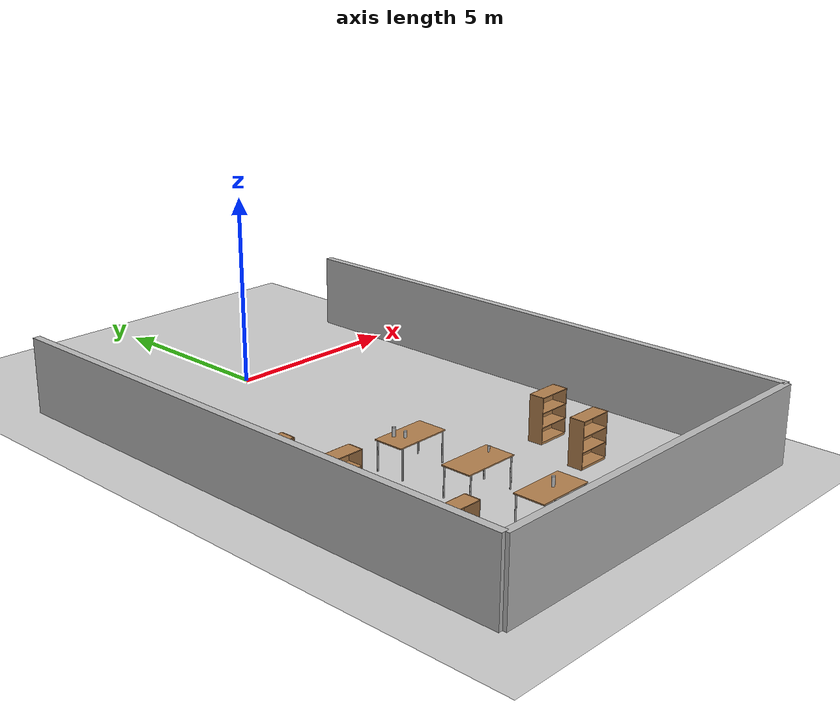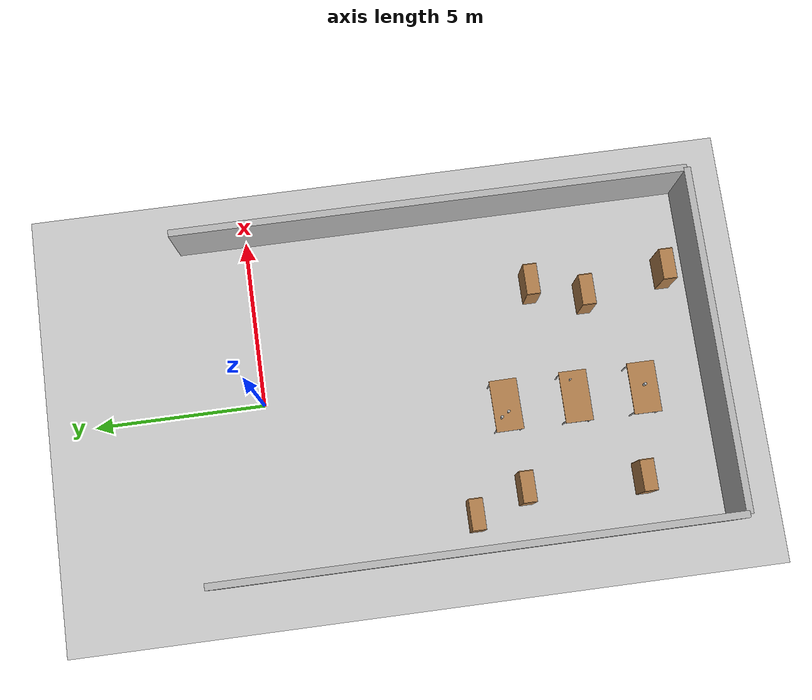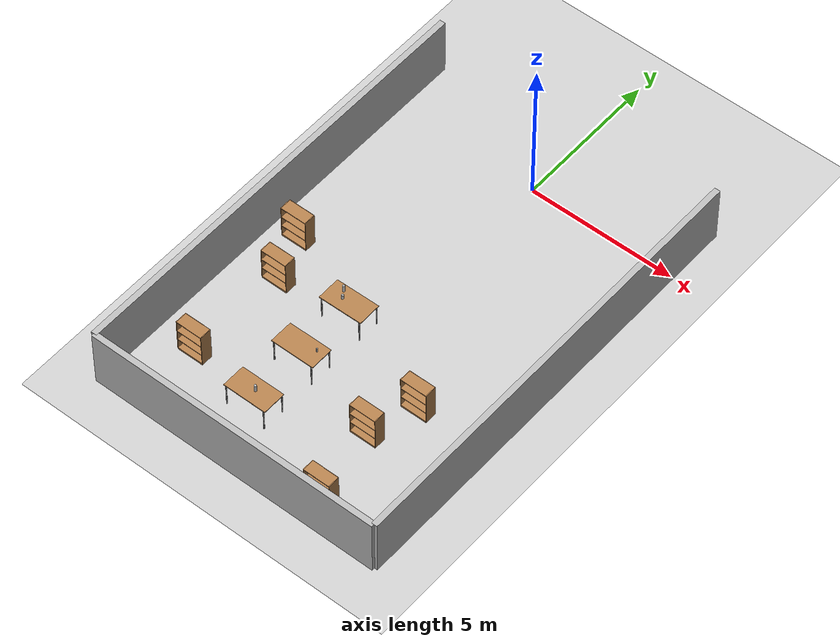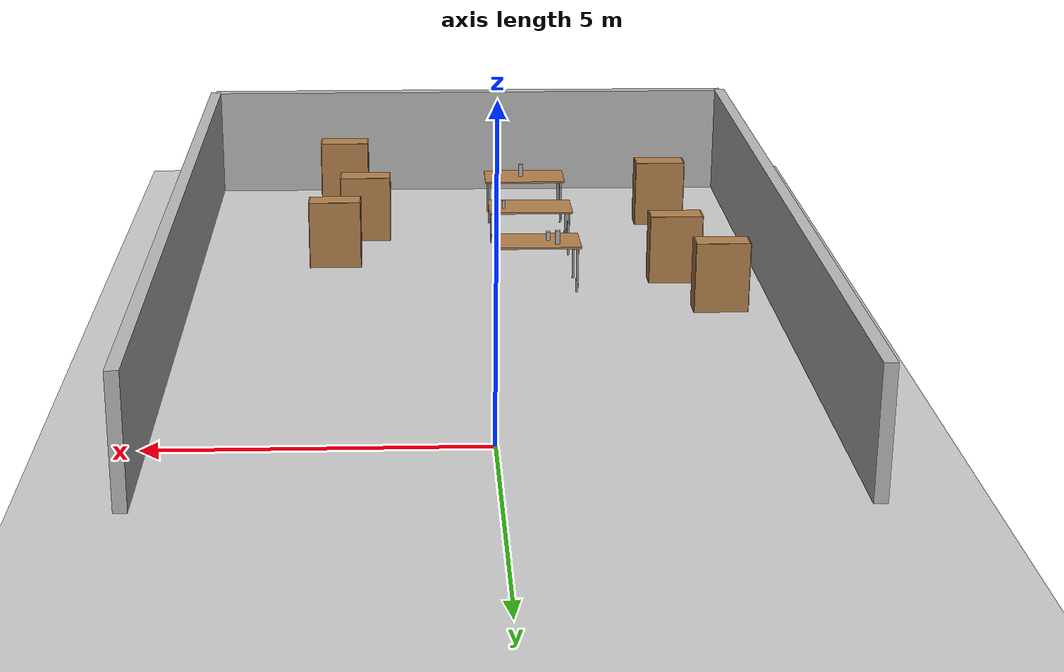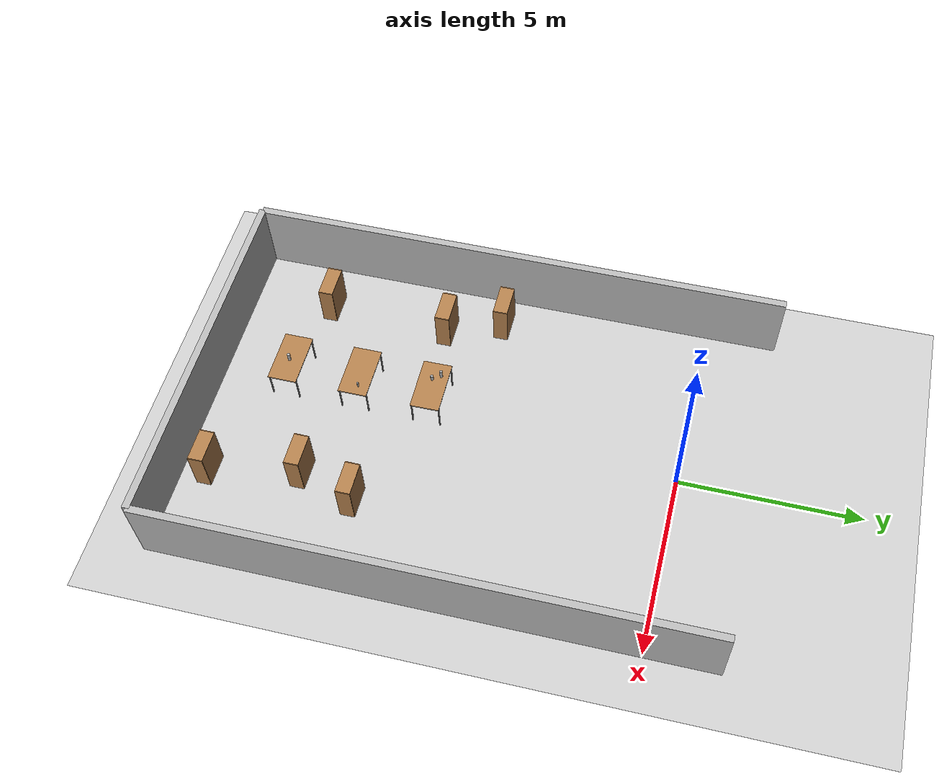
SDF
<sdf version="1.7">
 <world name="default">
  <model name="ground_plane">
   <static>1</static>
   <link name="link">
    <collision name="collision">
     <geometry><plane><normal>0 0 1</normal><size>100 100</size></plane></geometry>
     <surface><friction><ode><mu>100</mu><mu2>50</mu2></ode></friction></surface>
    </collision>
    <visual name="visual">
     <cast_shadows>0</cast_shadows>
     <geometry><plane><normal>0 0 1</normal><size>100 100</size></plane></geometry>
     <material>
      <script><uri>file://media/materials/scripts/gazebo.material</uri><name>Gazebo/Grey</name></script>
     </material>
    </visual>
    <velocity_decay><linear>0</linear><angular>0</angular></velocity_decay>
   </link>
  </model>
  <model name="wall_1_model">
   <pose>0 -13 1 0 -0 0</pose>
   <static>1</static>
   <link name="wall_1_body">
    <inertial>
     <mass>1</mass>
     <inertia><ixx>1</ixx><ixy>0</ixy><ixz>0</ixz><iyy>1</iyy><iyz>0</iyz><izz>1</izz></inertia>
    </inertial>
    <collision name="collision"><geometry><box><size>10 0.2 2</size></box></geometry></collision>
    <visual name="visual"><geometry><box><size>10 0.2 2</size></box></geometry></visual>
    <velocity_decay><linear>0</linear><angular>0</angular></velocity_decay>
   </link>
  </model>
  <model name="wall_3_model">
   <pose>-5 -5.5 1 0 -0 0</pose>
   <static>1</static>
   <link name="wall_3_body">
    <inertial>
     <mass>1</mass>
     <inertia><ixx>1</ixx><ixy>0</ixy><ixz>0</ixz><iyy>1</iyy><iyz>0</iyz><izz>1</izz></inertia>
    </inertial>
    <collision name="collision"><geometry><box><size>0.2 15 2</size></box></geometry></collision>
    <visual name="visual"><geometry><box><size>0.2 15 2</size></box></geometry></visual>
    <velocity_decay><linear>0</linear><angular>0</angular></velocity_decay>
   </link>
  </model>
  <model name="wall_4_model">
   <pose>5 -5.5 1 0 -0 0</pose>
   <static>1</static>
   <link name="wall_4_body">
    <inertial>
     <mass>1</mass>
     <inertia><ixx>1</ixx><ixy>0</ixy><ixz>0</ixz><iyy>1</iyy><iyz>0</iyz><izz>1</izz></inertia>
    </inertial>
    <collision name="collision"><geometry><box><size>0.2 15 2</size></box></geometry></collision>
    <visual name="visual"><geometry><box><size>0.2 15 2</size></box></geometry></visual>
    <velocity_decay><linear>0</linear><angular>0</angular></velocity_decay>
   </link>
  </model>
  <model name="bookshelf">
   <static>0</static>
   <link name="link">
    <inertial>
     <mass>1</mass>
     <inertia><ixx>1</ixx><ixy>0</ixy><ixz>0</ixz><iyy>1</iyy><iyz>0</iyz><izz>1</izz></inertia>
    </inertial>
    <collision name="back">
     <pose>0 0.005 0.6 0 -0 0</pose>
     <geometry><box><size>0.9 0.01 1.2</size></box></geometry>
    </collision>
    <visual name="visual1">
     <pose>0 0.005 0.6 0 -0 0</pose>
     <geometry><box><size>0.9 0.01 1.2</size></box></geometry>
     <material>
      <script><uri>file://media/materials/scripts/gazebo.material</uri><name>Gazebo/Wood</name></script>
     </material>
    </visual>
    <collision name="left_side">
     <pose>0.45 -0.195 0.6 0 -0 0</pose>
     <geometry><box><size>0.02 0.4 1.2</size></box></geometry>
    </collision>
    <visual name="visual2">
     <pose>0.45 -0.195 0.6 0 -0 0</pose>
     <geometry><box><size>0.02 0.4 1.2</size></box></geometry>
     <material>
      <script><uri>file://media/materials/scripts/gazebo.material</uri><name>Gazebo/Wood</name></script>
     </material>
    </visual>
    <collision name="right_side">
     <pose>-0.45 -0.195 0.6 0 -0 0</pose>
     <geometry><box><size>0.02 0.4 1.2</size></box></geometry>
    </collision>
    <visual name="visual3">
     <pose>-0.45 -0.195 0.6 0 -0 0</pose>
     <geometry><box><size>0.02 0.4 1.2</size></box></geometry>
     <material>
      <script><uri>file://media/materials/scripts/gazebo.material</uri><name>Gazebo/Wood</name></script>
     </material>
    </visual>
    <collision name="bottom">
     <pose>0 -0.195 0.03 0 -0 0</pose>
     <geometry><box><size>0.88 0.4 0.06</size></box></geometry>
    </collision>
    <visual name="visual4">
     <pose>0 -0.195 0.03 0 -0 0</pose>
     <geometry><box><size>0.88 0.4 0.06</size></box></geometry>
     <material>
      <script><uri>file://media/materials/scripts/gazebo.material</uri><name>Gazebo/Wood</name></script>
     </material>
    </visual>
    <collision name="top">
     <pose>0 -0.195 1.19 0 -0 0</pose>
     <geometry><box><size>0.88 0.4 0.02</size></box></geometry>
    </collision>
    <visual name="visual5">
     <pose>0 -0.195 1.19 0 -0 0</pose>
     <geometry><box><size>0.88 0.4 0.02</size></box></geometry>
     <material>
      <script><uri>file://media/materials/scripts/gazebo.material</uri><name>Gazebo/Wood</name></script>
     </material>
    </visual>
    <collision name="low_shelf">
     <pose>0 -0.195 0.43 0 -0 0</pose>
     <geometry><box><size>0.88 0.4 0.02</size></box></geometry>
    </collision>
    <visual name="visual6">
     <pose>0 -0.195 0.43 0 -0 0</pose>
     <geometry><box><size>0.88 0.4 0.02</size></box></geometry>
     <material>
      <script><uri>file://media/materials/scripts/gazebo.material</uri><name>Gazebo/Wood</name></script>
     </material>
    </visual>
    <collision name="high_shelf">
     <pose>0 -0.195 0.8 0 -0 0</pose>
     <geometry><box><size>0.88 0.4 0.02</size></box></geometry>
    </collision>
    <visual name="visual7">
     <pose>0 -0.195 0.8 0 -0 0</pose>
     <geometry><box><size>0.88 0.4 0.02</size></box></geometry>
     <material>
      <script><uri>file://media/materials/scripts/gazebo.material</uri><name>Gazebo/Wood</name></script>
     </material>
    </visual>
    <velocity_decay><linear>0</linear><angular>0</angular></velocity_decay>
   </link>
   <pose>2 -9.55401 0 -5e-06 0 0</pose>
  </model>
  <model name="table">
   <static>0</static>
   <link name="link">
    <collision name="surface">
     <pose>0 0 0.9 0 -0 0</pose>
     <geometry><box><size>1.5 0.8 0.03</size></box></geometry>
    </collision>
    <visual name="visual1">
     <pose>0 0 0.9 0 -0 0</pose>
     <geometry><box><size>1.5 0.8 0.03</size></box></geometry>
     <material>
      <script><uri>file://media/materials/scripts/gazebo.material</uri><name>Gazebo/Wood</name></script>
     </material>
    </visual>
    <collision name="front_left_leg">
     <pose>0.68 0.38 0.5 0 -0 0</pose>
     <geometry><cylinder><radius>0.02</radius><length>0.8</length></cylinder></geometry>
    </collision>
    <visual name="front_left_leg">
     <pose>0.68 0.38 0.5 0 -0 0</pose>
     <geometry><cylinder><radius>0.02</radius><length>0.8</length></cylinder></geometry>
     <material>
      <script><uri>file://media/materials/scripts/gazebo.material</uri><name>Gazebo/Grey</name></script>
     </material>
    </visual>
    <collision name="front_right_leg">
     <pose>0.68 -0.38 0.5 0 -0 0</pose>
     <geometry><cylinder><radius>0.02</radius><length>0.8</length></cylinder></geometry>
    </collision>
    <visual name="front_right_leg">
     <pose>0.68 -0.38 0.5 0 -0 0</pose>
     <geometry><cylinder><radius>0.02</radius><length>0.8</length></cylinder></geometry>
     <material>
      <script><uri>file://media/materials/scripts/gazebo.material</uri><name>Gazebo/Grey</name></script>
     </material>
    </visual>
    <collision name="back_right_leg">
     <pose>-0.68 -0.38 0.5 0 -0 0</pose>
     <geometry><cylinder><radius>0.02</radius><length>0.8</length></cylinder></geometry>
    </collision>
    <visual name="back_right_leg">
     <pose>-0.68 -0.38 0.5 0 -0 0</pose>
     <geometry><cylinder><radius>0.02</radius><length>0.8</length></cylinder></geometry>
     <material>
      <script><uri>file://media/materials/scripts/gazebo.material</uri><name>Gazebo/Grey</name></script>
     </material>
    </visual>
    <collision name="back_left_leg">
     <pose>-0.68 0.38 0.5 0 -0 0</pose>
     <geometry><cylinder><radius>0.02</radius><length>0.8</length></cylinder></geometry>
    </collision>
    <visual name="back_left_leg">
     <pose>-0.68 0.38 0.5 0 -0 0</pose>
     <geometry><cylinder><radius>0.02</radius><length>0.8</length></cylinder></geometry>
     <material>
      <script><uri>file://media/materials/scripts/gazebo.material</uri><name>Gazebo/Grey</name></script>
     </material>
    </visual>
    <velocity_decay><linear>0</linear><angular>0</angular></velocity_decay>
    <inertial>
     <inertia><ixx>1</ixx><ixy>0</ixy><ixz>0</ixz><iyy>1</iyy><iyz>0</iyz><izz>1</izz></inertia>
     <mass>1</mass>
    </inertial>
   </link>
   <pose>-1.00064 -8.99574 -0.105007 -8e-06 5.2e-05 -0.000544</pose>
  </model>
  <model name="bookshelf_2">
   <static>0</static>
   <link name="link">
    <inertial>
     <mass>1</mass>
     <inertia><ixx>1</ixx><ixy>0</ixy><ixz>0</ixz><iyy>1</iyy><iyz>0</iyz><izz>1</izz></inertia>
    </inertial>
    <collision name="back">
     <pose>0 0.005 0.6 0 -0 0</pose>
     <geometry><box><size>0.9 0.01 1.2</size></box></geometry>
    </collision>
    <visual name="visual1">
     <pose>0 0.005 0.6 0 -0 0</pose>
     <geometry><box><size>0.9 0.01 1.2</size></box></geometry>
     <material>
      <script><uri>file://media/materials/scripts/gazebo.material</uri><name>Gazebo/Wood</name></script>
     </material>
    </visual>
    <collision name="left_side">
     <pose>0.45 -0.195 0.6 0 -0 0</pose>
     <geometry><box><size>0.02 0.4 1.2</size></box></geometry>
    </collision>
    <visual name="visual2">
     <pose>0.45 -0.195 0.6 0 -0 0</pose>
     <geometry><box><size>0.02 0.4 1.2</size></box></geometry>
     <material>
      <script><uri>file://media/materials/scripts/gazebo.material</uri><name>Gazebo/Wood</name></script>
     </material>
    </visual>
    <collision name="right_side">
     <pose>-0.45 -0.195 0.6 0 -0 0</pose>
     <geometry><box><size>0.02 0.4 1.2</size></box></geometry>
    </collision>
    <visual name="visual3">
     <pose>-0.45 -0.195 0.6 0 -0 0</pose>
     <geometry><box><size>0.02 0.4 1.2</size></box></geometry>
     <material>
      <script><uri>file://media/materials/scripts/gazebo.material</uri><name>Gazebo/Wood</name></script>
     </material>
    </visual>
    <collision name="bottom">
     <pose>0 -0.195 0.03 0 -0 0</pose>
     <geometry><box><size>0.88 0.4 0.06</size></box></geometry>
    </collision>
    <visual name="visual4">
     <pose>0 -0.195 0.03 0 -0 0</pose>
     <geometry><box><size>0.88 0.4 0.06</size></box></geometry>
     <material>
      <script><uri>file://media/materials/scripts/gazebo.material</uri><name>Gazebo/Wood</name></script>
     </material>
    </visual>
    <collision name="top">
     <pose>0 -0.195 1.19 0 -0 0</pose>
     <geometry><box><size>0.88 0.4 0.02</size></box></geometry>
    </collision>
    <visual name="visual5">
     <pose>0 -0.195 1.19 0 -0 0</pose>
     <geometry><box><size>0.88 0.4 0.02</size></box></geometry>
     <material>
      <script><uri>file://media/materials/scripts/gazebo.material</uri><name>Gazebo/Wood</name></script>
     </material>
    </visual>
    <collision name="low_shelf">
     <pose>0 -0.195 0.43 0 -0 0</pose>
     <geometry><box><size>0.88 0.4 0.02</size></box></geometry>
    </collision>
    <visual name="visual6">
     <pose>0 -0.195 0.43 0 -0 0</pose>
     <geometry><box><size>0.88 0.4 0.02</size></box></geometry>
     <material>
      <script><uri>file://media/materials/scripts/gazebo.material</uri><name>Gazebo/Wood</name></script>
     </material>
    </visual>
    <collision name="high_shelf">
     <pose>0 -0.195 0.8 0 -0 0</pose>
     <geometry><box><size>0.88 0.4 0.02</size></box></geometry>
    </collision>
    <visual name="visual7">
     <pose>0 -0.195 0.8 0 -0 0</pose>
     <geometry><box><size>0.88 0.4 0.02</size></box></geometry>
     <material>
      <script><uri>file://media/materials/scripts/gazebo.material</uri><name>Gazebo/Wood</name></script>
     </material>
    </visual>
    <velocity_decay><linear>0</linear><angular>0</angular></velocity_decay>
   </link>
   <pose>-3.41849 -7 -1e-06 -2.3e-05 3e-06 0</pose>
  </model>
  <model name="table_0">
   <static>0</static>
   <link name="link">
    <collision name="surface">
     <pose>0 0 0.9 0 -0 0</pose>
     <geometry><box><size>1.5 0.8 0.03</size></box></geometry>
    </collision>
    <visual name="visual1">
     <pose>0 0 0.9 0 -0 0</pose>
     <geometry><box><size>1.5 0.8 0.03</size></box></geometry>
     <material>
      <script><uri>file://media/materials/scripts/gazebo.material</uri><name>Gazebo/Wood</name></script>
     </material>
    </visual>
    <collision name="front_left_leg">
     <pose>0.68 0.38 0.5 0 -0 0</pose>
     <geometry><cylinder><radius>0.02</radius><length>0.8</length></cylinder></geometry>
    </collision>
    <visual name="front_left_leg">
     <pose>0.68 0.38 0.5 0 -0 0</pose>
     <geometry><cylinder><radius>0.02</radius><length>0.8</length></cylinder></geometry>
     <material>
      <script><uri>file://media/materials/scripts/gazebo.material</uri><name>Gazebo/Grey</name></script>
     </material>
    </visual>
    <collision name="front_right_leg">
     <pose>0.68 -0.38 0.5 0 -0 0</pose>
     <geometry><cylinder><radius>0.02</radius><length>0.8</length></cylinder></geometry>
    </collision>
    <visual name="front_right_leg">
     <pose>0.68 -0.38 0.5 0 -0 0</pose>
     <geometry><cylinder><radius>0.02</radius><length>0.8</length></cylinder></geometry>
     <material>
      <script><uri>file://media/materials/scripts/gazebo.material</uri><name>Gazebo/Grey</name></script>
     </material>
    </visual>
    <collision name="back_right_leg">
     <pose>-0.68 -0.38 0.5 0 -0 0</pose>
     <geometry><cylinder><radius>0.02</radius><length>0.8</length></cylinder></geometry>
    </collision>
    <visual name="back_right_leg">
     <pose>-0.68 -0.38 0.5 0 -0 0</pose>
     <geometry><cylinder><radius>0.02</radius><length>0.8</length></cylinder></geometry>
     <material>
      <script><uri>file://media/materials/scripts/gazebo.material</uri><name>Gazebo/Grey</name></script>
     </material>
    </visual>
    <collision name="back_left_leg">
     <pose>-0.68 0.38 0.5 0 -0 0</pose>
     <geometry><cylinder><radius>0.02</radius><length>0.8</length></cylinder></geometry>
    </collision>
    <visual name="back_left_leg">
     <pose>-0.68 0.38 0.5 0 -0 0</pose>
     <geometry><cylinder><radius>0.02</radius><length>0.8</length></cylinder></geometry>
     <material>
      <script><uri>file://media/materials/scripts/gazebo.material</uri><name>Gazebo/Grey</name></script>
     </material>
    </visual>
    <velocity_decay><linear>0</linear><angular>0</angular></velocity_decay>
    <inertial>
     <inertia><ixx>1</ixx><ixy>0</ixy><ixz>0</ixz><iyy>1</iyy><iyz>0</iyz><izz>1</izz></inertia>
     <mass>1</mass>
    </inertial>
   </link>
   <pose>-0.9933 -6.97211 -0.111429 -0.00054 -0.00169 0.010892</pose>
  </model>
  <model name="table_1">
   <static>0</static>
   <link name="link">
    <collision name="surface">
     <pose>0 0 0.9 0 -0 0</pose>
     <geometry><box><size>1.5 0.8 0.03</size></box></geometry>
    </collision>
    <visual name="visual1">
     <pose>0 0 0.9 0 -0 0</pose>
     <geometry><box><size>1.5 0.8 0.03</size></box></geometry>
     <material>
      <script><uri>file://media/materials/scripts/gazebo.material</uri><name>Gazebo/Wood</name></script>
     </material>
    </visual>
    <collision name="front_left_leg">
     <pose>0.68 0.38 0.5 0 -0 0</pose>
     <geometry><cylinder><radius>0.02</radius><length>0.8</length></cylinder></geometry>
    </collision>
    <visual name="front_left_leg">
     <pose>0.68 0.38 0.5 0 -0 0</pose>
     <geometry><cylinder><radius>0.02</radius><length>0.8</length></cylinder></geometry>
     <material>
      <script><uri>file://media/materials/scripts/gazebo.material</uri><name>Gazebo/Grey</name></script>
     </material>
    </visual>
    <collision name="front_right_leg">
     <pose>0.68 -0.38 0.5 0 -0 0</pose>
     <geometry><cylinder><radius>0.02</radius><length>0.8</length></cylinder></geometry>
    </collision>
    <visual name="front_right_leg">
     <pose>0.68 -0.38 0.5 0 -0 0</pose>
     <geometry><cylinder><radius>0.02</radius><length>0.8</length></cylinder></geometry>
     <material>
      <script><uri>file://media/materials/scripts/gazebo.material</uri><name>Gazebo/Grey</name></script>
     </material>
    </visual>
    <collision name="back_right_leg">
     <pose>-0.68 -0.38 0.5 0 -0 0</pose>
     <geometry><cylinder><radius>0.02</radius><length>0.8</length></cylinder></geometry>
    </collision>
    <visual name="back_right_leg">
     <pose>-0.68 -0.38 0.5 0 -0 0</pose>
     <geometry><cylinder><radius>0.02</radius><length>0.8</length></cylinder></geometry>
     <material>
      <script><uri>file://media/materials/scripts/gazebo.material</uri><name>Gazebo/Grey</name></script>
     </material>
    </visual>
    <collision name="back_left_leg">
     <pose>-0.68 0.38 0.5 0 -0 0</pose>
     <geometry><cylinder><radius>0.02</radius><length>0.8</length></cylinder></geometry>
    </collision>
    <visual name="back_left_leg">
     <pose>-0.68 0.38 0.5 0 -0 0</pose>
     <geometry><cylinder><radius>0.02</radius><length>0.8</length></cylinder></geometry>
     <material>
      <script><uri>file://media/materials/scripts/gazebo.material</uri><name>Gazebo/Grey</name></script>
     </material>
    </visual>
    <velocity_decay><linear>0</linear><angular>0</angular></velocity_decay>
    <inertial>
     <inertia><ixx>1</ixx><ixy>0</ixy><ixz>0</ixz><iyy>1</iyy><iyz>0</iyz><izz>1</izz></inertia>
     <mass>1</mass>
    </inertial>
   </link>
   <pose>-1.00308 -10.9916 -0.107832 -3e-06 0.000182 -0.001766</pose>
  </model>
  <model name="bookshelf_3">
   <static>0</static>
   <link name="link">
    <inertial>
     <mass>1</mass>
     <inertia><ixx>1</ixx><ixy>0</ixy><ixz>0</ixz><iyy>1</iyy><iyz>0</iyz><izz>1</izz></inertia>
    </inertial>
    <collision name="back">
     <pose>0 0.005 0.6 0 -0 0</pose>
     <geometry><box><size>0.9 0.01 1.2</size></box></geometry>
    </collision>
    <visual name="visual1">
     <pose>0 0.005 0.6 0 -0 0</pose>
     <geometry><box><size>0.9 0.01 1.2</size></box></geometry>
     <material>
      <script><uri>file://media/materials/scripts/gazebo.material</uri><name>Gazebo/Wood</name></script>
     </material>
    </visual>
    <collision name="left_side">
     <pose>0.45 -0.195 0.6 0 -0 0</pose>
     <geometry><box><size>0.02 0.4 1.2</size></box></geometry>
    </collision>
    <visual name="visual2">
     <pose>0.45 -0.195 0.6 0 -0 0</pose>
     <geometry><box><size>0.02 0.4 1.2</size></box></geometry>
     <material>
      <script><uri>file://media/materials/scripts/gazebo.material</uri><name>Gazebo/Wood</name></script>
     </material>
    </visual>
    <collision name="right_side">
     <pose>-0.45 -0.195 0.6 0 -0 0</pose>
     <geometry><box><size>0.02 0.4 1.2</size></box></geometry>
    </collision>
    <visual name="visual3">
     <pose>-0.45 -0.195 0.6 0 -0 0</pose>
     <geometry><box><size>0.02 0.4 1.2</size></box></geometry>
     <material>
      <script><uri>file://media/materials/scripts/gazebo.material</uri><name>Gazebo/Wood</name></script>
     </material>
    </visual>
    <collision name="bottom">
     <pose>0 -0.195 0.03 0 -0 0</pose>
     <geometry><box><size>0.88 0.4 0.06</size></box></geometry>
    </collision>
    <visual name="visual4">
     <pose>0 -0.195 0.03 0 -0 0</pose>
     <geometry><box><size>0.88 0.4 0.06</size></box></geometry>
     <material>
      <script><uri>file://media/materials/scripts/gazebo.material</uri><name>Gazebo/Wood</name></script>
     </material>
    </visual>
    <collision name="top">
     <pose>0 -0.195 1.19 0 -0 0</pose>
     <geometry><box><size>0.88 0.4 0.02</size></box></geometry>
    </collision>
    <visual name="visual5">
     <pose>0 -0.195 1.19 0 -0 0</pose>
     <geometry><box><size>0.88 0.4 0.02</size></box></geometry>
     <material>
      <script><uri>file://media/materials/scripts/gazebo.material</uri><name>Gazebo/Wood</name></script>
     </material>
    </visual>
    <collision name="low_shelf">
     <pose>0 -0.195 0.43 0 -0 0</pose>
     <geometry><box><size>0.88 0.4 0.02</size></box></geometry>
    </collision>
    <visual name="visual6">
     <pose>0 -0.195 0.43 0 -0 0</pose>
     <geometry><box><size>0.88 0.4 0.02</size></box></geometry>
     <material>
      <script><uri>file://media/materials/scripts/gazebo.material</uri><name>Gazebo/Wood</name></script>
     </material>
    </visual>
    <collision name="high_shelf">
     <pose>0 -0.195 0.8 0 -0 0</pose>
     <geometry><box><size>0.88 0.4 0.02</size></box></geometry>
    </collision>
    <visual name="visual7">
     <pose>0 -0.195 0.8 0 -0 0</pose>
     <geometry><box><size>0.88 0.4 0.02</size></box></geometry>
     <material>
      <script><uri>file://media/materials/scripts/gazebo.material</uri><name>Gazebo/Wood</name></script>
     </material>
    </visual>
    <velocity_decay><linear>0</linear><angular>0</angular></velocity_decay>
   </link>
   <pose>2.45055 -12 1e-06 -1.2e-05 2e-06 -0</pose>
  </model>
  <model name="bookshelf_4">
   <static>0</static>
   <link name="link">
    <inertial>
     <mass>1</mass>
     <inertia><ixx>1</ixx><ixy>0</ixy><ixz>0</ixz><iyy>1</iyy><iyz>0</iyz><izz>1</izz></inertia>
    </inertial>
    <collision name="back">
     <pose>0 0.005 0.6 0 -0 0</pose>
     <geometry><box><size>0.9 0.01 1.2</size></box></geometry>
    </collision>
    <visual name="visual1">
     <pose>0 0.005 0.6 0 -0 0</pose>
     <geometry><box><size>0.9 0.01 1.2</size></box></geometry>
     <material>
      <script><uri>file://media/materials/scripts/gazebo.material</uri><name>Gazebo/Wood</name></script>
     </material>
    </visual>
    <collision name="left_side">
     <pose>0.45 -0.195 0.6 0 -0 0</pose>
     <geometry><box><size>0.02 0.4 1.2</size></box></geometry>
    </collision>
    <visual name="visual2">
     <pose>0.45 -0.195 0.6 0 -0 0</pose>
     <geometry><box><size>0.02 0.4 1.2</size></box></geometry>
     <material>
      <script><uri>file://media/materials/scripts/gazebo.material</uri><name>Gazebo/Wood</name></script>
     </material>
    </visual>
    <collision name="right_side">
     <pose>-0.45 -0.195 0.6 0 -0 0</pose>
     <geometry><box><size>0.02 0.4 1.2</size></box></geometry>
    </collision>
    <visual name="visual3">
     <pose>-0.45 -0.195 0.6 0 -0 0</pose>
     <geometry><box><size>0.02 0.4 1.2</size></box></geometry>
     <material>
      <script><uri>file://media/materials/scripts/gazebo.material</uri><name>Gazebo/Wood</name></script>
     </material>
    </visual>
    <collision name="bottom">
     <pose>0 -0.195 0.03 0 -0 0</pose>
     <geometry><box><size>0.88 0.4 0.06</size></box></geometry>
    </collision>
    <visual name="visual4">
     <pose>0 -0.195 0.03 0 -0 0</pose>
     <geometry><box><size>0.88 0.4 0.06</size></box></geometry>
     <material>
      <script><uri>file://media/materials/scripts/gazebo.material</uri><name>Gazebo/Wood</name></script>
     </material>
    </visual>
    <collision name="top">
     <pose>0 -0.195 1.19 0 -0 0</pose>
     <geometry><box><size>0.88 0.4 0.02</size></box></geometry>
    </collision>
    <visual name="visual5">
     <pose>0 -0.195 1.19 0 -0 0</pose>
     <geometry><box><size>0.88 0.4 0.02</size></box></geometry>
     <material>
      <script><uri>file://media/materials/scripts/gazebo.material</uri><name>Gazebo/Wood</name></script>
     </material>
    </visual>
    <collision name="low_shelf">
     <pose>0 -0.195 0.43 0 -0 0</pose>
     <geometry><box><size>0.88 0.4 0.02</size></box></geometry>
    </collision>
    <visual name="visual6">
     <pose>0 -0.195 0.43 0 -0 0</pose>
     <geometry><box><size>0.88 0.4 0.02</size></box></geometry>
     <material>
      <script><uri>file://media/materials/scripts/gazebo.material</uri><name>Gazebo/Wood</name></script>
     </material>
    </visual>
    <collision name="high_shelf">
     <pose>0 -0.195 0.8 0 -0 0</pose>
     <geometry><box><size>0.88 0.4 0.02</size></box></geometry>
    </collision>
    <visual name="visual7">
     <pose>0 -0.195 0.8 0 -0 0</pose>
     <geometry><box><size>0.88 0.4 0.02</size></box></geometry>
     <material>
      <script><uri>file://media/materials/scripts/gazebo.material</uri><name>Gazebo/Wood</name></script>
     </material>
    </visual>
    <velocity_decay><linear>0</linear><angular>0</angular></velocity_decay>
   </link>
   <pose>2.51316 -8 1e-06 -6.9e-05 -0 0</pose>
  </model>
  <model name="bookshelf_5">
   <static>0</static>
   <link name="link">
    <inertial>
     <mass>1</mass>
     <inertia><ixx>1</ixx><ixy>0</ixy><ixz>0</ixz><iyy>1</iyy><iyz>0</iyz><izz>1</izz></inertia>
    </inertial>
    <collision name="back">
     <pose>0 0.005 0.6 0 -0 0</pose>
     <geometry><box><size>0.9 0.01 1.2</size></box></geometry>
    </collision>
    <visual name="visual1">
     <pose>0 0.005 0.6 0 -0 0</pose>
     <geometry><box><size>0.9 0.01 1.2</size></box></geometry>
     <material>
      <script><uri>file://media/materials/scripts/gazebo.material</uri><name>Gazebo/Wood</name></script>
     </material>
    </visual>
    <collision name="left_side">
     <pose>0.45 -0.195 0.6 0 -0 0</pose>
     <geometry><box><size>0.02 0.4 1.2</size></box></geometry>
    </collision>
    <visual name="visual2">
     <pose>0.45 -0.195 0.6 0 -0 0</pose>
     <geometry><box><size>0.02 0.4 1.2</size></box></geometry>
     <material>
      <script><uri>file://media/materials/scripts/gazebo.material</uri><name>Gazebo/Wood</name></script>
     </material>
    </visual>
    <collision name="right_side">
     <pose>-0.45 -0.195 0.6 0 -0 0</pose>
     <geometry><box><size>0.02 0.4 1.2</size></box></geometry>
    </collision>
    <visual name="visual3">
     <pose>-0.45 -0.195 0.6 0 -0 0</pose>
     <geometry><box><size>0.02 0.4 1.2</size></box></geometry>
     <material>
      <script><uri>file://media/materials/scripts/gazebo.material</uri><name>Gazebo/Wood</name></script>
     </material>
    </visual>
    <collision name="bottom">
     <pose>0 -0.195 0.03 0 -0 0</pose>
     <geometry><box><size>0.88 0.4 0.06</size></box></geometry>
    </collision>
    <visual name="visual4">
     <pose>0 -0.195 0.03 0 -0 0</pose>
     <geometry><box><size>0.88 0.4 0.06</size></box></geometry>
     <material>
      <script><uri>file://media/materials/scripts/gazebo.material</uri><name>Gazebo/Wood</name></script>
     </material>
    </visual>
    <collision name="top">
     <pose>0 -0.195 1.19 0 -0 0</pose>
     <geometry><box><size>0.88 0.4 0.02</size></box></geometry>
    </collision>
    <visual name="visual5">
     <pose>0 -0.195 1.19 0 -0 0</pose>
     <geometry><box><size>0.88 0.4 0.02</size></box></geometry>
     <material>
      <script><uri>file://media/materials/scripts/gazebo.material</uri><name>Gazebo/Wood</name></script>
     </material>
    </visual>
    <collision name="low_shelf">
     <pose>0 -0.195 0.43 0 -0 0</pose>
     <geometry><box><size>0.88 0.4 0.02</size></box></geometry>
    </collision>
    <visual name="visual6">
     <pose>0 -0.195 0.43 0 -0 0</pose>
     <geometry><box><size>0.88 0.4 0.02</size></box></geometry>
     <material>
      <script><uri>file://media/materials/scripts/gazebo.material</uri><name>Gazebo/Wood</name></script>
     </material>
    </visual>
    <collision name="high_shelf">
     <pose>0 -0.195 0.8 0 -0 0</pose>
     <geometry><box><size>0.88 0.4 0.02</size></box></geometry>
    </collision>
    <visual name="visual7">
     <pose>0 -0.195 0.8 0 -0 0</pose>
     <geometry><box><size>0.88 0.4 0.02</size></box></geometry>
     <material>
      <script><uri>file://media/materials/scripts/gazebo.material</uri><name>Gazebo/Wood</name></script>
     </material>
    </visual>
    <velocity_decay><linear>0</linear><angular>0</angular></velocity_decay>
   </link>
   <pose>-3.53929 -10.4222 0 -4.5e-05 -0 0</pose>
  </model>
  <model name="bookshelf_6">
   <static>0</static>
   <link name="link">
    <inertial>
     <mass>1</mass>
     <inertia><ixx>1</ixx><ixy>0</ixy><ixz>0</ixz><iyy>1</iyy><iyz>0</iyz><izz>1</izz></inertia>
    </inertial>
    <collision name="back">
     <pose>0 0.005 0.6 0 -0 0</pose>
     <geometry><box><size>0.9 0.01 1.2</size></box></geometry>
    </collision>
    <visual name="visual1">
     <pose>0 0.005 0.6 0 -0 0</pose>
     <geometry><box><size>0.9 0.01 1.2</size></box></geometry>
     <material>
      <script><uri>file://media/materials/scripts/gazebo.material</uri><name>Gazebo/Wood</name></script>
     </material>
    </visual>
    <collision name="left_side">
     <pose>0.45 -0.195 0.6 0 -0 0</pose>
     <geometry><box><size>0.02 0.4 1.2</size></box></geometry>
    </collision>
    <visual name="visual2">
     <pose>0.45 -0.195 0.6 0 -0 0</pose>
     <geometry><box><size>0.02 0.4 1.2</size></box></geometry>
     <material>
      <script><uri>file://media/materials/scripts/gazebo.material</uri><name>Gazebo/Wood</name></script>
     </material>
    </visual>
    <collision name="right_side">
     <pose>-0.45 -0.195 0.6 0 -0 0</pose>
     <geometry><box><size>0.02 0.4 1.2</size></box></geometry>
    </collision>
    <visual name="visual3">
     <pose>-0.45 -0.195 0.6 0 -0 0</pose>
     <geometry><box><size>0.02 0.4 1.2</size></box></geometry>
     <material>
      <script><uri>file://media/materials/scripts/gazebo.material</uri><name>Gazebo/Wood</name></script>
     </material>
    </visual>
    <collision name="bottom">
     <pose>0 -0.195 0.03 0 -0 0</pose>
     <geometry><box><size>0.88 0.4 0.06</size></box></geometry>
    </collision>
    <visual name="visual4">
     <pose>0 -0.195 0.03 0 -0 0</pose>
     <geometry><box><size>0.88 0.4 0.06</size></box></geometry>
     <material>
      <script><uri>file://media/materials/scripts/gazebo.material</uri><name>Gazebo/Wood</name></script>
     </material>
    </visual>
    <collision name="top">
     <pose>0 -0.195 1.19 0 -0 0</pose>
     <geometry><box><size>0.88 0.4 0.02</size></box></geometry>
    </collision>
    <visual name="visual5">
     <pose>0 -0.195 1.19 0 -0 0</pose>
     <geometry><box><size>0.88 0.4 0.02</size></box></geometry>
     <material>
      <script><uri>file://media/materials/scripts/gazebo.material</uri><name>Gazebo/Wood</name></script>
     </material>
    </visual>
    <collision name="low_shelf">
     <pose>0 -0.195 0.43 0 -0 0</pose>
     <geometry><box><size>0.88 0.4 0.02</size></box></geometry>
    </collision>
    <visual name="visual6">
     <pose>0 -0.195 0.43 0 -0 0</pose>
     <geometry><box><size>0.88 0.4 0.02</size></box></geometry>
     <material>
      <script><uri>file://media/materials/scripts/gazebo.material</uri><name>Gazebo/Wood</name></script>
     </material>
    </visual>
    <collision name="high_shelf">
     <pose>0 -0.195 0.8 0 -0 0</pose>
     <geometry><box><size>0.88 0.4 0.02</size></box></geometry>
    </collision>
    <visual name="visual7">
     <pose>0 -0.195 0.8 0 -0 0</pose>
     <geometry><box><size>0.88 0.4 0.02</size></box></geometry>
     <material>
      <script><uri>file://media/materials/scripts/gazebo.material</uri><name>Gazebo/Wood</name></script>
     </material>
    </visual>
    <velocity_decay><linear>0</linear><angular>0</angular></velocity_decay>
   </link>
   <pose>-4 -5.47465 1e-06 -6.4e-05 -0 -0</pose>
  </model>
  <model name="pringles">
   <static>0</static>
   <link name="link">
    <inertial>
     <mass>0.25</mass>
     <inertia><ixx>0</ixx><ixy>0</ixy><ixz>0</ixz><iyy>0</iyy><iyz>0</iyz><izz>0</izz></inertia>
    </inertial>
    <collision name="collision">
     <geometry><cylinder><radius>0.04</radius><length>0.235</length></cylinder></geometry>
    </collision>
    <visual name="visual">
     <geometry><cylinder><radius>0.04</radius><length>0.235</length></cylinder></geometry>
     <material>
      <script>
       <uri>model://pringles/material/scripts</uri>
       <uri>model://pringles/material/textures</uri>
       <name>Custom/pringles</name>
      </script>
     </material>
    </visual>
    <velocity_decay><linear>0</linear><angular>0</angular></velocity_decay>
   </link>
   <pose>-1.34507 -6.77959 0.920379 -6.3e-05 -0.002105 -0.027896</pose>
  </model>
  <model name="sprite">
   <static>0</static>
   <link name="link">
    <inertial>
     <mass>0.25</mass>
     <inertia><ixx>0</ixx><ixy>0</ixy><ixz>0</ixz><iyy>0</iyy><iyz>0</iyz><izz>0</izz></inertia>
    </inertial>
    <collision name="collision">
     <pose>0 0 0.075 -3.14159 -0 0</pose>
     <geometry><cylinder><radius>0.04</radius><length>0.15</length></cylinder></geometry>
    </collision>
    <visual name="visual">
     <pose>0 0 0.075 -3.14159 -0 0</pose>
     <geometry><cylinder><radius>0.04</radius><length>0.15</length></cylinder></geometry>
     <material>
      <script>
       <uri>model://sprite/material/scripts</uri>
       <uri>model://sprite/material/textures</uri>
       <name>Custom/sprite</name>
      </script>
     </material>
    </visual>
    <velocity_decay><linear>0</linear><angular>0</angular></velocity_decay>
   </link>
   <pose>-1.19725 -6.99975 0.803243 -0.000156 -0.001331 0.005111</pose>
  </model>
  <model name="biscuits_pack">
   <static>0</static>
   <link name="link">
    <inertial>
     <mass>0.01</mass>
     <inertia><ixx>0.001</ixx><ixy>0</ixy><ixz>0</ixz><iyy>0.001</iyy><iyz>0</iyz><izz>0.001</izz></inertia>
    </inertial>
    <collision name="collision">
     <geometry><cylinder><radius>0.025</radius><length>0.15</length></cylinder></geometry>
     <surface><contact><ode><min_depth>0.005</min_depth></ode></contact></surface>
    </collision>
    <visual name="visual">
     <geometry><cylinder><radius>0.025</radius><length>0.15</length></cylinder></geometry>
     <material>
      <script>
       <uri>model://biscuits_pack/material/scripts</uri>
       <uri>model://biscuits_pack/material/textures</uri>
       <name>Custom/biscuits_pack</name>
      </script>
     </material>
    </visual>
   </link>
   <pose>-0.516774 -8.89176 0.884967 -0.000392 -6e-05 -0.535273</pose>
  </model>
  <model name="pringles2">
   <static>0</static>
   <link name="link">
    <inertial>
     <mass>0.25</mass>
     <inertia><ixx>0</ixx><ixy>0</ixy><ixz>0</ixz><iyy>0</iyy><iyz>0</iyz><izz>0</izz></inertia>
    </inertial>
    <collision name="collision">
     <pose>0 0 0.12 -3.14159 -0 0</pose>
     <geometry><cylinder><radius>0.04</radius><length>0.235</length></cylinder></geometry>
    </collision>
    <visual name="visual">
     <pose>0 0 0.12 -3.14159 -0 0</pose>
     <geometry><cylinder><radius>0.04</radius><length>0.235</length></cylinder></geometry>
     <material>
      <script>
       <uri>model://pringles2/material/scripts</uri>
       <uri>model://pringles2/material/textures</uri>
       <name>Custom/pringles2</name>
      </script>
     </material>
    </visual>
    <velocity_decay><linear>0</linear><angular>0</angular></velocity_decay>
   </link>
   <pose>-0.938076 -10.9931 0.804661 -0.00019 -0.000241 0.208409</pose>
  </model>
 </world>
</sdf>
